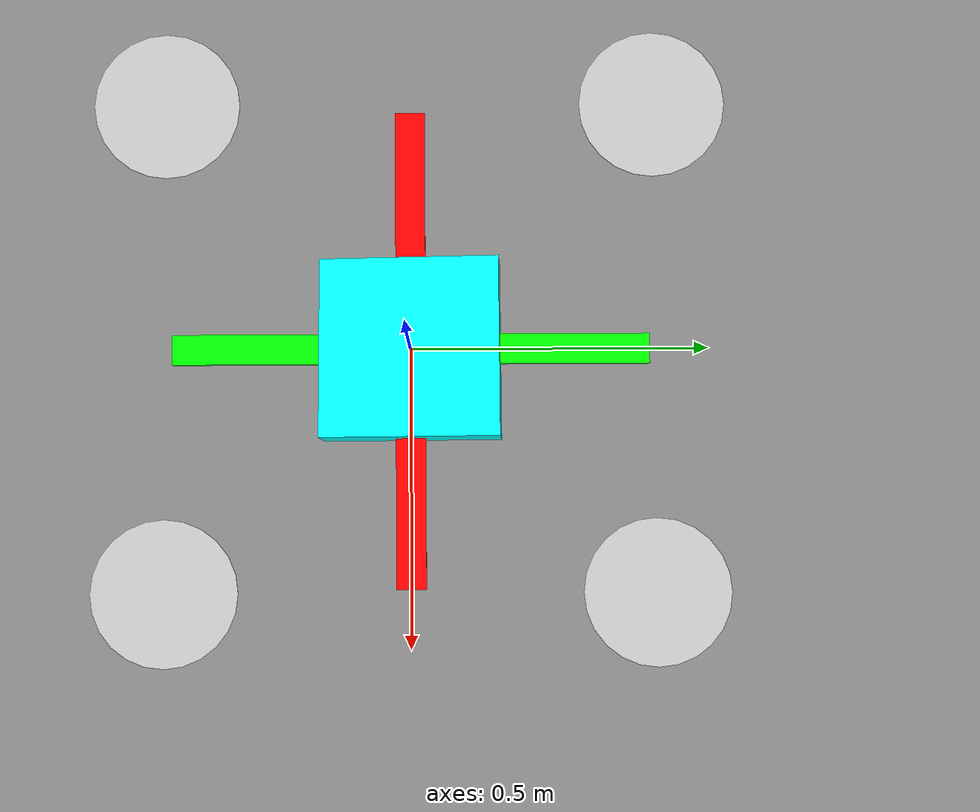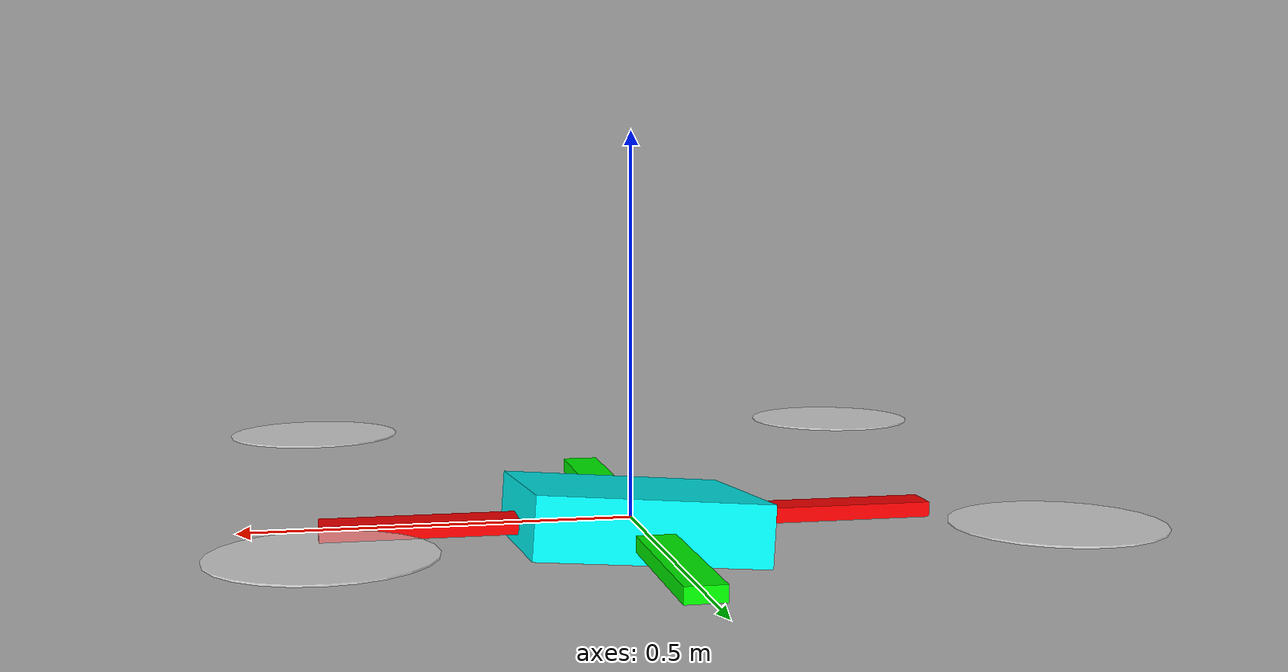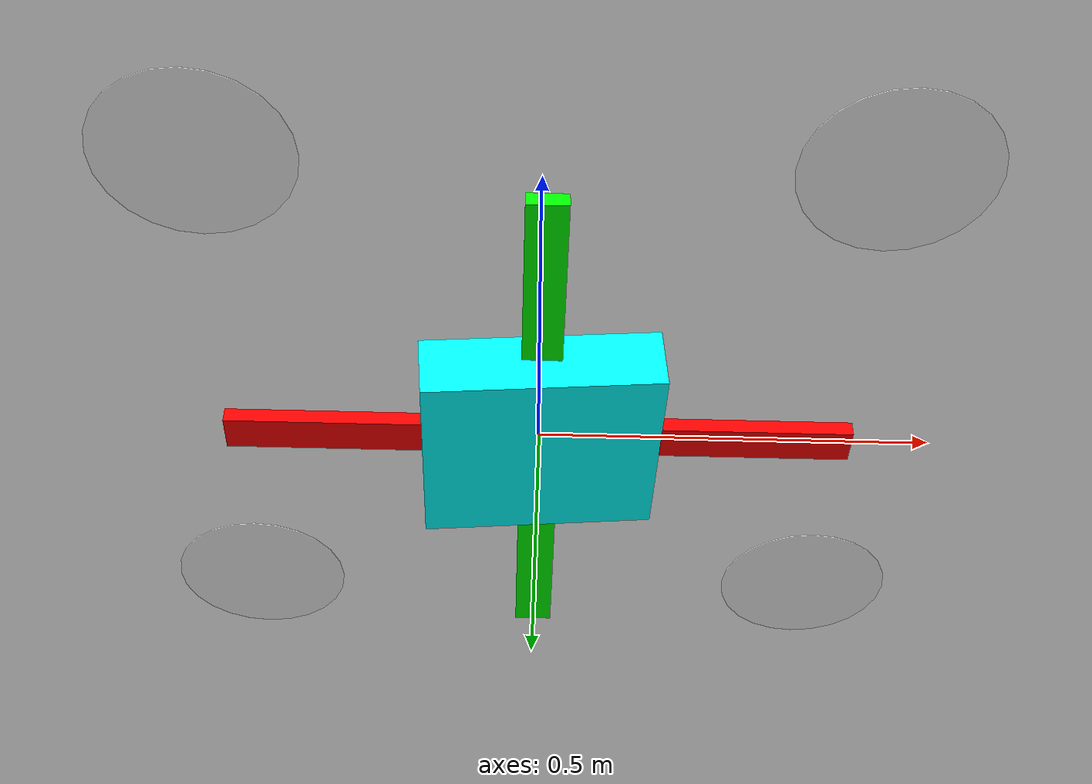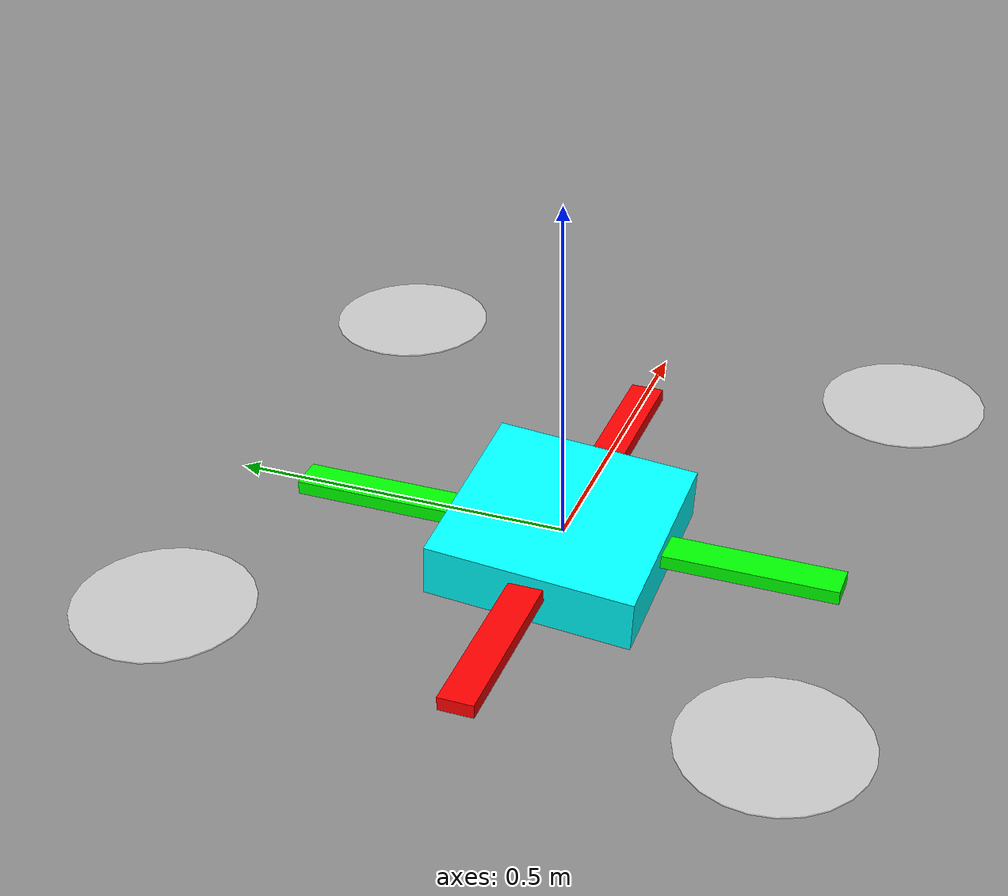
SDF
<sdf version="1.7">
  <model name="simple_drone">
    <static>false</static>

    <link name="base_link">
      <gravity>false</gravity>

      <inertial>
        <mass>1.0</mass>
        <inertia>
          <ixx>0.01</ixx>
          <iyy>0.01</iyy>
          <izz>0.01</izz>
          <ixy>0</ixy>
          <ixz>0</ixz>
          <iyz>0</iyz>
        </inertia>
      </inertial>

      <collision name="body_collision">
        <geometry>
          <box>
            <size>0.8 0.8 0.12</size>
          </box>
        </geometry>
      </collision>

      <!-- BODY (BRIGHT CYAN, TILTED) -->
      <visual name="body">
        <pose>0 0 0 0.08 -0.08 0</pose>
        <geometry>
          <box>
            <size>0.3 0.3 0.08</size>
          </box>
        </geometry>
        <material>
          <ambient>0 1 1 1</ambient>
          <diffuse>0 1 1 1</diffuse>
        </material>
      </visual>

      <!-- ARM X (BRIGHT RED) -->
      <visual name="arm_x">
        <geometry>
          <box>
            <size>0.8 0.05 0.02</size>
          </box>
        </geometry>
        <material>
          <ambient>1 0 0 1</ambient>
          <diffuse>1 0 0 1</diffuse>
        </material>
      </visual>

      <!-- ARM Y (BRIGHT GREEN) -->
      <visual name="arm_y">
        <geometry>
          <box>
            <size>0.05 0.8 0.02</size>
          </box>
        </geometry>
        <material>
          <ambient>0 1 0 1</ambient>
          <diffuse>0 1 0 1</diffuse>
        </material>
      </visual>

      <!-- PROPELLERS (SPIN BLUR STYLE) -->

      <visual name="prop1">
        <pose>0.4 0.4 0.06 0 0 0</pose>
        <geometry>
          <cylinder>
            <radius>0.12</radius>
            <length>0.002</length>
          </cylinder>
        </geometry>
        <material>
          <ambient>1 1 1 0.6</ambient>
          <diffuse>1 1 1 0.6</diffuse>
        </material>
      </visual>

      <visual name="prop2">
        <pose>-0.4 0.4 0.06 0 0 0</pose>
        <geometry>
          <cylinder>
            <radius>0.12</radius>
            <length>0.002</length>
          </cylinder>
        </geometry>
        <material>
          <ambient>1 1 1 0.6</ambient>
          <diffuse>1 1 1 0.6</diffuse>
        </material>
      </visual>

      <visual name="prop3">
        <pose>0.4 -0.4 0.06 0 0 0</pose>
        <geometry>
          <cylinder>
            <radius>0.12</radius>
            <length>0.002</length>
          </cylinder>
        </geometry>
        <material>
          <ambient>1 1 1 0.6</ambient>
          <diffuse>1 1 1 0.6</diffuse>
        </material>
      </visual>

      <visual name="prop4">
        <pose>-0.4 -0.4 0.06 0 0 0</pose>
        <geometry>
          <cylinder>
            <radius>0.12</radius>
            <length>0.002</length>
          </cylinder>
        </geometry>
        <material>
          <ambient>1 1 1 0.6</ambient>
          <diffuse>1 1 1 0.6</diffuse>
        </material>
      </visual>

    </link>

    <plugin filename="gz-sim-velocity-control-system" name="gz::sim::systems::VelocityControl">
      <link_name>base_link</link_name>
    </plugin>

    <plugin filename="gz-sim-pose-publisher-system" name="gz::sim::systems::PosePublisher">
      <publish_link_pose>false</publish_link_pose>
      <publish_nested_model_pose>false</publish_nested_model_pose>
      <publish_model_pose>true</publish_model_pose>
    </plugin>
  </model>
</sdf>
